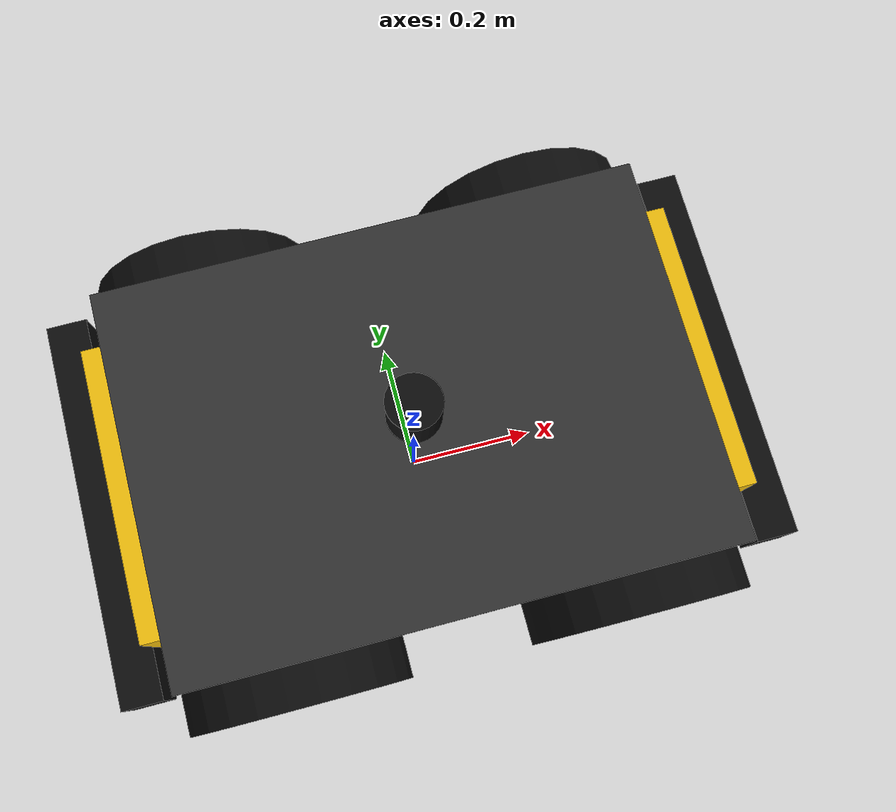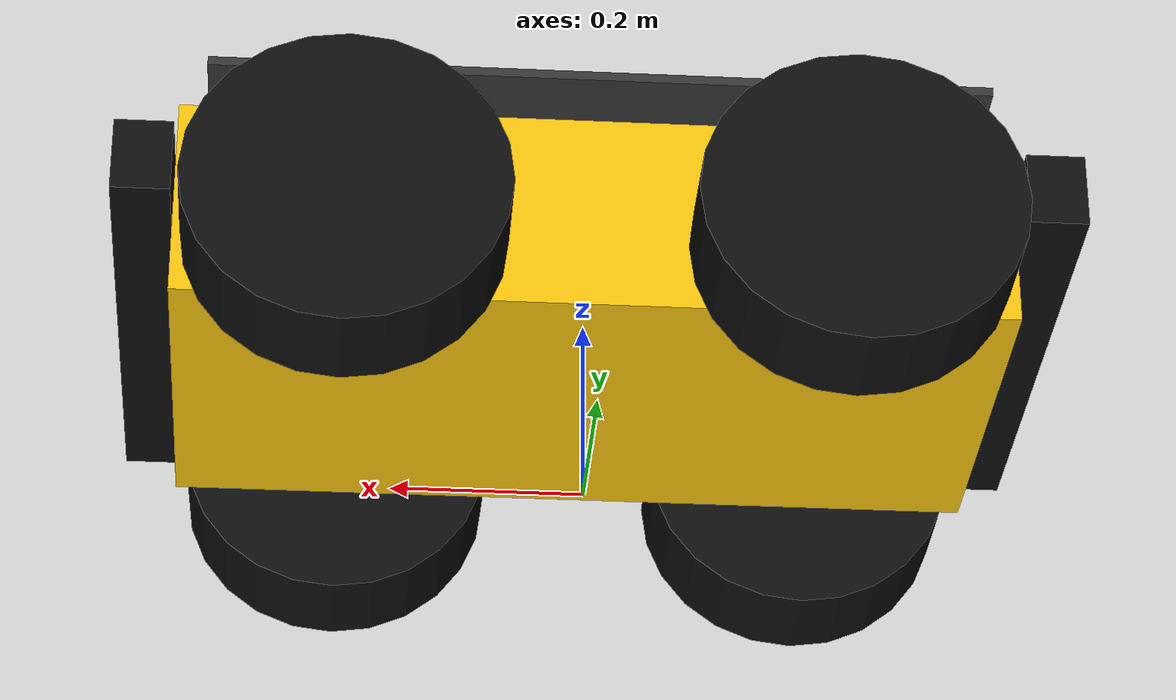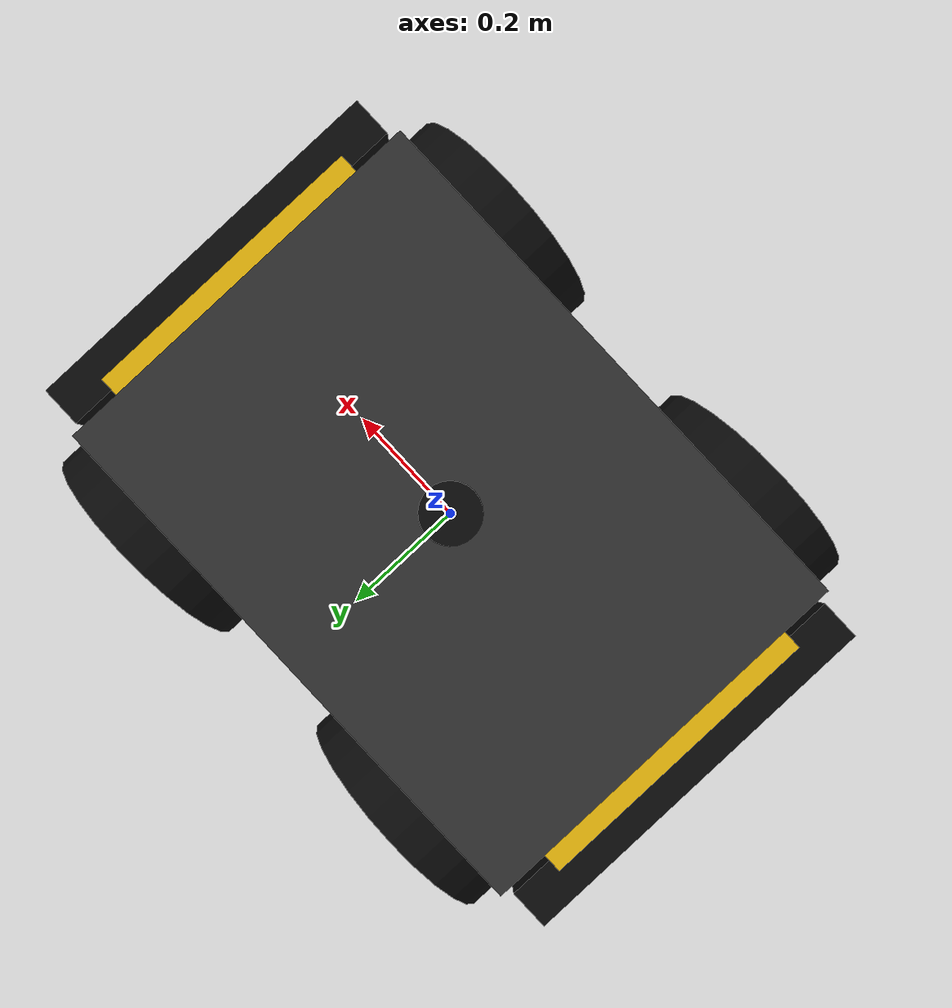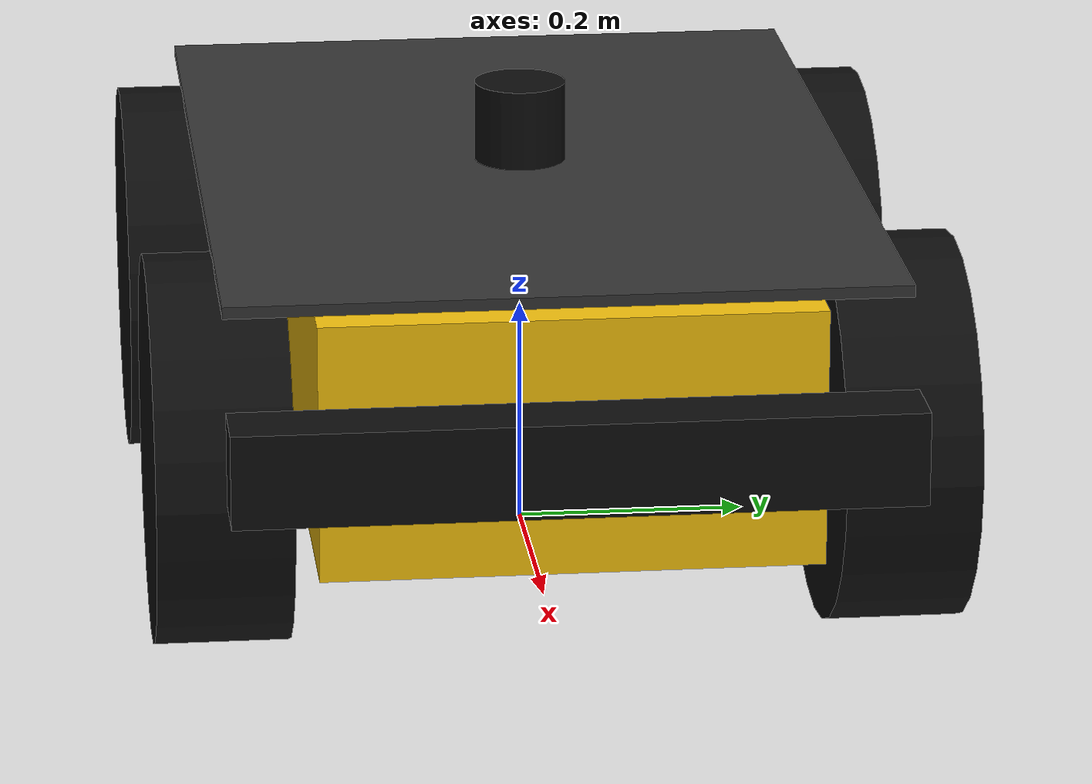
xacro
<?xml version="1.0"?>
<robot name="husky" xmlns:xacro="http://www.ros.org/wiki/xacro">

  <!-- ===================== Dimensions ===================== -->
  <xacro:property name="wheel_radius" value="0.1651"/>
  <xacro:property name="wheel_width"  value="0.1143"/>
  <xacro:property name="wheel_mass"   value="2.637"/>
  <xacro:property name="wheelbase"    value="0.512"/>   <!-- front-rear axle distance -->
  <xacro:property name="track"        value="0.5708"/>  <!-- left-right wheel distance -->

  <xacro:property name="chassis_x"        value="0.86"/>
  <xacro:property name="chassis_y"        value="0.42"/>
  <xacro:property name="chassis_z"        value="0.22"/>
  <xacro:property name="chassis_z_offset" value="0.05"/>  <!-- chassis centre above axle -->
  <xacro:property name="chassis_mass"     value="46.0"/>

  <xacro:property name="top_plate_z"  value="${chassis_z_offset + chassis_z / 2}"/>
  <xacro:property name="lidar_radius" value="0.04"/>
  <xacro:property name="lidar_length" value="0.07"/>
  <!-- Lidar optical centre, relative to base_link (axle height) -->
  <xacro:property name="lidar_z"      value="${top_plate_z + 0.01 + lidar_length / 2}"/>

  <!-- ===================== Materials ===================== -->
  <material name="husky_yellow"><color rgba="0.95 0.75 0.05 1"/></material>
  <material name="dark_grey"><color rgba="0.2 0.2 0.2 1"/></material>
  <material name="black"><color rgba="0.05 0.05 0.05 1"/></material>

  <!-- ===================== Links ===================== -->
  <!-- base_footprint: on the ground, below the robot centre -->
  <link name="base_footprint"/>

  <joint name="base_footprint_joint" type="fixed">
    <parent link="base_footprint"/>
    <child link="base_link"/>
    <origin xyz="0 0 ${wheel_radius}" rpy="0 0 0"/>
  </joint>

  <!-- base_link: robot centre at axle height -->
  <link name="base_link">
    <visual>
      <origin xyz="0 0 ${chassis_z_offset}" rpy="0 0 0"/>
      <geometry><box size="${chassis_x} ${chassis_y} ${chassis_z}"/></geometry>
      <material name="husky_yellow"/>
    </visual>
    <visual>
      <origin xyz="0 0 ${top_plate_z + 0.005}" rpy="0 0 0"/>
      <geometry><box size="0.80 0.57 0.01"/></geometry>
      <material name="dark_grey"/>
    </visual>
    <visual>
      <origin xyz="${chassis_x / 2 + 0.03} 0 ${chassis_z_offset}" rpy="0 0 0"/>
      <geometry><box size="0.06 0.57 0.08"/></geometry>
      <material name="black"/>
    </visual>
    <visual>
      <origin xyz="${-chassis_x / 2 - 0.03} 0 ${chassis_z_offset}" rpy="0 0 0"/>
      <geometry><box size="0.06 0.57 0.08"/></geometry>
      <material name="black"/>
    </visual>
    <collision>
      <origin xyz="0 0 ${chassis_z_offset}" rpy="0 0 0"/>
      <geometry><box size="${chassis_x} ${chassis_y} ${chassis_z}"/></geometry>
    </collision>
    <inertial>
      <origin xyz="0 0 ${chassis_z_offset}" rpy="0 0 0"/>
      <mass value="${chassis_mass}"/>
      <inertia ixx="${chassis_mass / 12 * (chassis_y * chassis_y + chassis_z * chassis_z)}" ixy="0" ixz="0"
               iyy="${chassis_mass / 12 * (chassis_x * chassis_x + chassis_z * chassis_z)}" iyz="0"
               izz="${chassis_mass / 12 * (chassis_x * chassis_x + chassis_y * chassis_y)}"/>
    </inertial>
  </link>

  <!-- ===================== Wheels ===================== -->
  <xacro:macro name="wheel" params="prefix x y">
    <link name="${prefix}_wheel_link">
      <visual>
        <origin xyz="0 0 0" rpy="${pi / 2} 0 0"/>
        <geometry><cylinder radius="${wheel_radius}" length="${wheel_width}"/></geometry>
        <material name="black"/>
      </visual>
      <collision>
        <origin xyz="0 0 0" rpy="${pi / 2} 0 0"/>
        <geometry><cylinder radius="${wheel_radius}" length="${wheel_width}"/></geometry>
      </collision>
      <inertial>
        <origin xyz="0 0 0" rpy="${pi / 2} 0 0"/>
        <mass value="${wheel_mass}"/>
        <inertia ixx="${wheel_mass / 12 * (3 * wheel_radius * wheel_radius + wheel_width * wheel_width)}" ixy="0" ixz="0"
                 iyy="${wheel_mass / 12 * (3 * wheel_radius * wheel_radius + wheel_width * wheel_width)}" iyz="0"
                 izz="${wheel_mass / 2 * wheel_radius * wheel_radius}"/>
      </inertial>
    </link>

    <!-- Positive rotation about +y drives the robot forward -->
    <joint name="${prefix}_wheel_joint" type="continuous">
      <parent link="base_link"/>
      <child link="${prefix}_wheel_link"/>
      <origin xyz="${x} ${y} 0" rpy="0 0 0"/>
      <axis xyz="0 1 0"/>
    </joint>

    <gazebo reference="${prefix}_wheel_link">
      <mu1>1.0</mu1>
      <mu2>1.0</mu2>
    </gazebo>
  </xacro:macro>

  <xacro:wheel prefix="front_left"  x="${wheelbase / 2}"  y="${track / 2}"/>
  <xacro:wheel prefix="front_right" x="${wheelbase / 2}"  y="${-track / 2}"/>
  <xacro:wheel prefix="rear_left"   x="${-wheelbase / 2}" y="${track / 2}"/>
  <xacro:wheel prefix="rear_right"  x="${-wheelbase / 2}" y="${-track / 2}"/>

  <!-- ===================== Lidar (centred on top) ===================== -->
  <link name="lidar_link">
    <visual>
      <geometry><cylinder radius="${lidar_radius}" length="${lidar_length}"/></geometry>
      <material name="black"/>
    </visual>
    <collision>
      <geometry><cylinder radius="${lidar_radius}" length="${lidar_length}"/></geometry>
    </collision>
    <inertial>
      <mass value="0.17"/>
      <inertia ixx="1e-4" ixy="0" ixz="0" iyy="1e-4" iyz="0" izz="1e-4"/>
    </inertial>
  </link>

  <joint name="lidar_joint" type="fixed">
    <parent link="base_link"/>
    <child link="lidar_link"/>
    <origin xyz="0 0 ${lidar_z}" rpy="0 0 0"/>
  </joint>

  <gazebo reference="lidar_link">
    <sensor name="lidar" type="gpu_lidar">
      <topic>scan</topic>
      <!-- frame_id written into the LaserScan header (Fortress tag name) -->
      <ignition_frame_id>lidar_link</ignition_frame_id>
      <update_rate>10</update_rate>
      <always_on>true</always_on>
      <visualize>true</visualize>
      <lidar>
        <scan>
          <horizontal>
            <samples>360</samples>
            <resolution>1</resolution>
            <min_angle>-3.14159</min_angle>
            <max_angle>3.14159</max_angle>
          </horizontal>
          <vertical>
            <samples>1</samples>
            <resolution>1</resolution>
            <min_angle>0</min_angle>
            <max_angle>0</max_angle>
          </vertical>
        </scan>
        <range>
          <min>0.10</min>
          <max>20.0</max>
          <resolution>0.01</resolution>
        </range>
        <!-- Set stddev to 0 for exact ranges -->
        <noise>
          <type>gaussian</type>
          <mean>0.0</mean>
          <stddev>0.01</stddev>
        </noise>
      </lidar>
    </sensor>
  </gazebo>

  <!-- ===================== IMU (robot centre) ===================== -->
  <link name="imu_link">
    <inertial>
      <mass value="0.01"/>
      <inertia ixx="1e-6" ixy="0" ixz="0" iyy="1e-6" iyz="0" izz="1e-6"/>
    </inertial>
  </link>

  <joint name="imu_joint" type="fixed">
    <parent link="base_link"/>
    <child link="imu_link"/>
    <origin xyz="0 0 0" rpy="0 0 0"/>
  </joint>

  <gazebo reference="imu_link">
    <sensor name="imu" type="imu">
      <topic>imu</topic>
      <ignition_frame_id>imu_link</ignition_frame_id>
      <update_rate>100</update_rate>
      <always_on>true</always_on>
      <!-- Noise roughly like a consumer MEMS IMU; set stddev to 0 for exact values -->
      <imu>
        <angular_velocity>
          <x><noise type="gaussian"><mean>0</mean><stddev>0.002</stddev></noise></x>
          <y><noise type="gaussian"><mean>0</mean><stddev>0.002</stddev></noise></y>
          <z><noise type="gaussian"><mean>0</mean><stddev>0.002</stddev></noise></z>
        </angular_velocity>
        <linear_acceleration>
          <x><noise type="gaussian"><mean>0</mean><stddev>0.02</stddev></noise></x>
          <y><noise type="gaussian"><mean>0</mean><stddev>0.02</stddev></noise></y>
          <z><noise type="gaussian"><mean>0</mean><stddev>0.02</stddev></noise></z>
        </linear_acceleration>
      </imu>
    </sensor>
  </gazebo>

  <!-- ===================== Gazebo systems ===================== -->
  <gazebo>
    <!-- Wheel encoders: publishes every joint's position/velocity -->
    <plugin filename="ignition-gazebo-joint-state-publisher-system"
            name="ignition::gazebo::systems::JointStatePublisher"/>

    <!-- Skid-steer drive: /cmd_vel in, wheel-encoder odometry out on /odom + /tf -->
    <plugin filename="ignition-gazebo-diff-drive-system"
            name="ignition::gazebo::systems::DiffDrive">
      <left_joint>front_left_wheel_joint</left_joint>
      <left_joint>rear_left_wheel_joint</left_joint>
      <right_joint>front_right_wheel_joint</right_joint>
      <right_joint>rear_right_wheel_joint</right_joint>
      <wheel_separation>${track}</wheel_separation>
      <wheel_radius>${wheel_radius}</wheel_radius>
      <odom_publish_frequency>50</odom_publish_frequency>
      <topic>cmd_vel</topic>
      <odom_topic>odom</odom_topic>
      <tf_topic>tf</tf_topic>
      <frame_id>odom</frame_id>
      <child_frame_id>base_footprint</child_frame_id>
    </plugin>

    <!-- Ground truth pose from the simulator (to check the sensors against) -->
    <plugin filename="ignition-gazebo-odometry-publisher-system"
            name="ignition::gazebo::systems::OdometryPublisher">
      <odom_frame>world</odom_frame>
      <robot_base_frame>base_footprint</robot_base_frame>
      <odom_publish_frequency>50</odom_publish_frequency>
    </plugin>
  </gazebo>

</robot>
